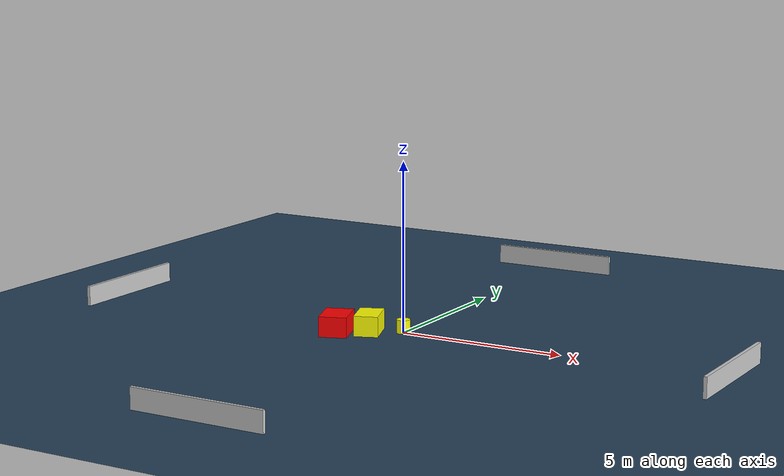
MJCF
<?xml version="1.0" ?>
<mujoco model="generated_environment">
  <option timestep="0.01" integrator="RK4" cone="elliptic"/>
  <default>
    <geom density="1"/>
  </default>
  <asset>
    <texture builtin="gradient" height="3072" name="skybox" rgb1="0.3 0.5 0.7" rgb2="0 0 0" type="skybox" width="512"/>
    <texture builtin="checker" height="300" name="groundplane" rgb1="0.2 0.3 0.4" rgb2="0.1 0.2 0.3" type="2d" width="300"/>
    <material name="groundplane" reflectance="0.2" texrepeat="5 5" texture="groundplane"/>
  </asset>
  <worldbody>
    <light dir="0 0 -1" directional="true" pos="0 0 1.5"/>
    <geom condim="3" friction="0.5 0.005 0.001" material="groundplane" name="floor" pos="0 0 0" size="0 0 0.05" type="plane"/>
    <body name="walls">
      <geom name="wall_1" condim="4" pos="-10.0 0.0 0.3" rgba="0.800000011920929 0.800000011920929 0.800000011920929 1.0" size="0.05 2.0 0.3" type="box"/>
      <geom name="wall_2" condim="4" pos="10.0 0.0 0.3" rgba="0.800000011920929 0.800000011920929 0.800000011920929 1.0" size="0.05 2.0 0.3" type="box"/>
      <geom name="wall_3" condim="4" pos="0.0 -10.0 0.3" rgba="0.800000011920929 0.800000011920929 0.800000011920929 1.0" size="2.0 0.05 0.3" type="box"/>
      <geom name="wall_4" condim="4" pos="0.0 10.0 0.3" rgba="0.800000011920929 0.800000011920929 0.800000011920929 1.0" size="2.0 0.05 0.3" type="box"/>
    </body>
    <body name="robot">
      <joint name="joint_x" type="slide" pos="0 0 0" axis="1 0 0"/>
      <joint name="joint_y" type="slide" pos="0 0 0" axis="0 1 0"/>
      <geom name="robot" type="cylinder" pos="0.0 0.0 0.2" size="0.2 0.2 0.0" mass="5.0" friction="1.0 0.005 0.0001" condim="4" rgba="1.0 1.0 0.0 1.0"/>
    </body>
    <body name="obstacle_1_movable">
      <geom name="obstacle_1_movable" condim="4" pos="-0.8739612950652117 -0.4787976677089036 0.3" euler="0 0 200.4813383991565" friction="0.0 0.005 0.001" rgba="1.0 1.0 0.0 1.0" size="0.3551577852715344 0.5402617426518316 0.3" type="box" mass="0.1"/>
      <joint type="free"/>
    </body>
    <body name="obstacle_2_static">
      <geom name="obstacle_2_static" condim="4" pos="-1.6544389719235908 -1.0021366837219852 0.3" euler="0 0 19.9028194447266" friction="0.0 0.005 0.001" rgba="1.0 0.0 0.0 1.0" size="0.4121349548073681 0.5575925312207908 0.3" type="box"/>
    </body>
  </worldbody>
  <actuator>
    <motor name="actuator_x" joint="joint_x" gear="1" ctrlrange="-1 1"/>
    <motor name="actuator_y" joint="joint_y" gear="1" ctrlrange="-1 1"/>
  </actuator>
</mujoco>
